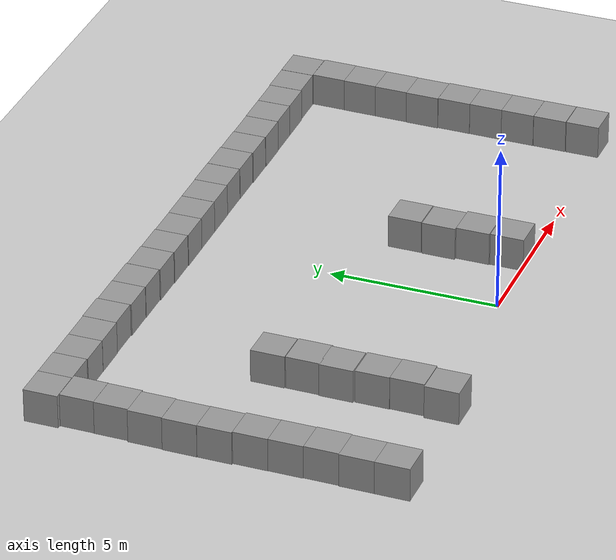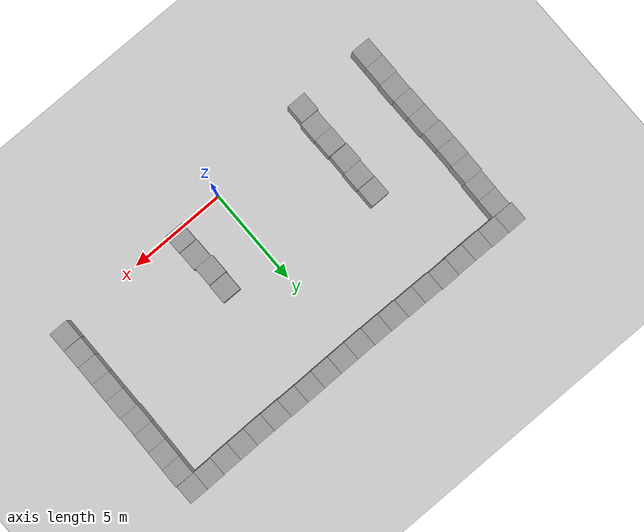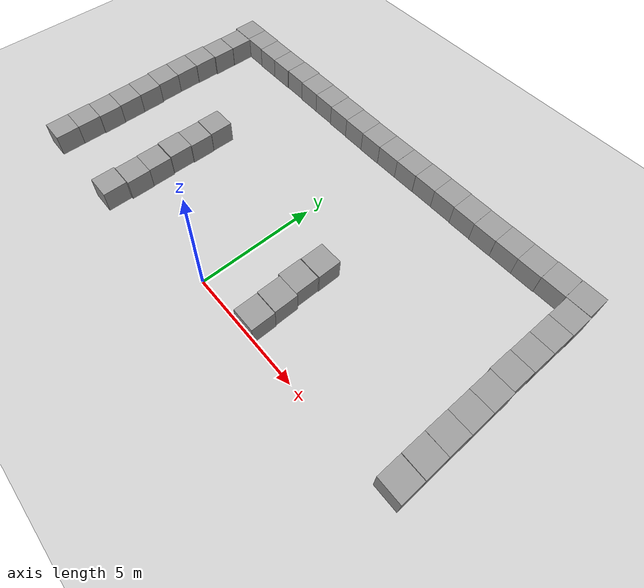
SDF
<sdf version="1.7">
 <world name="default">
  <model name="ground_plane">
   <static>1</static>
   <link name="link">
    <collision name="collision">
     <geometry><plane><normal>0 0 1</normal><size>100 100</size></plane></geometry>
     <surface>
      <contact><collide_bitmask>65535</collide_bitmask></contact>
      <friction><ode><mu>100</mu><mu2>50</mu2></ode></friction>
     </surface>
    </collision>
    <visual name="visual">
     <cast_shadows>0</cast_shadows>
     <geometry><plane><normal>0 0 1</normal><size>100 100</size></plane></geometry>
     <material>
      <script><uri>file://media/materials/scripts/gazebo.material</uri><name>Gazebo/Grey</name></script>
     </material>
    </visual>
   </link>
  </model>
  <model name="unit_box_0_clone_6">
   <pose>-9.47202 -0.506039 0.5 0 -0 -0.002882</pose>
   <link name="link">
    <inertial>
     <mass>1</mass>
     <inertia>
      <ixx>0.166667</ixx>
      <ixy>0</ixy>
      <ixz>0</ixz>
      <iyy>0.166667</iyy>
      <iyz>0</iyz>
      <izz>0.166667</izz>
     </inertia>
    </inertial>
    <collision name="collision"><geometry><box><size>1 1 1</size></box></geometry></collision>
    <visual name="visual">
     <geometry><box><size>1 1 1</size></box></geometry>
     <material>
      <script><name>Gazebo/Grey</name><uri>file://media/materials/scripts/gazebo.material</uri></script>
     </material>
    </visual>
   </link>
  </model>
  <model name="unit_box_0_clone_7">
   <pose>-9.46766 0.493972 0.499995 0 -1e-05 -0.002908</pose>
   <link name="link">
    <inertial>
     <mass>1</mass>
     <inertia>
      <ixx>0.166667</ixx>
      <ixy>0</ixy>
      <ixz>0</ixz>
      <iyy>0.166667</iyy>
      <iyz>0</iyz>
      <izz>0.166667</izz>
     </inertia>
    </inertial>
    <collision name="collision"><geometry><box><size>1 1 1</size></box></geometry></collision>
    <visual name="visual">
     <geometry><box><size>1 1 1</size></box></geometry>
     <material>
      <script><name>Gazebo/Grey</name><uri>file://media/materials/scripts/gazebo.material</uri></script>
     </material>
    </visual>
   </link>
  </model>
  <model name="unit_box_0_clone_8">
   <pose>-9.43801 1.49392 0.5 0 0 -0.00297</pose>
   <link name="link">
    <inertial>
     <mass>1</mass>
     <inertia>
      <ixx>0.166667</ixx>
      <ixy>0</ixy>
      <ixz>0</ixz>
      <iyy>0.166667</iyy>
      <iyz>0</iyz>
      <izz>0.166667</izz>
     </inertia>
    </inertial>
    <collision name="collision"><geometry><box><size>1 1 1</size></box></geometry></collision>
    <visual name="visual">
     <geometry><box><size>1 1 1</size></box></geometry>
     <material>
      <script><name>Gazebo/Grey</name><uri>file://media/materials/scripts/gazebo.material</uri></script>
     </material>
    </visual>
   </link>
  </model>
  <model name="unit_box_0_clone_9">
   <pose>-9.45504 2.49411 0.499995 -0 -1e-05 -0.003236</pose>
   <link name="link">
    <inertial>
     <mass>1</mass>
     <inertia>
      <ixx>0.166667</ixx>
      <ixy>0</ixy>
      <ixz>0</ixz>
      <iyy>0.166667</iyy>
      <iyz>0</iyz>
      <izz>0.166667</izz>
     </inertia>
    </inertial>
    <collision name="collision"><geometry><box><size>1 1 1</size></box></geometry></collision>
    <visual name="visual">
     <geometry><box><size>1 1 1</size></box></geometry>
     <material>
      <script><name>Gazebo/Grey</name><uri>file://media/materials/scripts/gazebo.material</uri></script>
     </material>
    </visual>
   </link>
  </model>
  <model name="unit_box_0_clone_10">
   <pose>-9.46283 3.49415 0.5 -0 -0 -0.003247</pose>
   <link name="link">
    <inertial>
     <mass>1</mass>
     <inertia>
      <ixx>0.166667</ixx>
      <ixy>0</ixy>
      <ixz>0</ixz>
      <iyy>0.166667</iyy>
      <iyz>0</iyz>
      <izz>0.166667</izz>
     </inertia>
    </inertial>
    <collision name="collision"><geometry><box><size>1 1 1</size></box></geometry></collision>
    <visual name="visual">
     <geometry><box><size>1 1 1</size></box></geometry>
     <material>
      <script><name>Gazebo/Grey</name><uri>file://media/materials/scripts/gazebo.material</uri></script>
     </material>
    </visual>
   </link>
  </model>
  <model name="unit_box_0_clone_11">
   <pose>-9.50926 4.49438 0.5 -0 -0 -0.003385</pose>
   <link name="link">
    <inertial>
     <mass>1</mass>
     <inertia>
      <ixx>0.166667</ixx>
      <ixy>0</ixy>
      <ixz>0</ixz>
      <iyy>0.166667</iyy>
      <iyz>0</iyz>
      <izz>0.166667</izz>
     </inertia>
    </inertial>
    <collision name="collision"><geometry><box><size>1 1 1</size></box></geometry></collision>
    <visual name="visual">
     <geometry><box><size>1 1 1</size></box></geometry>
     <material>
      <script><name>Gazebo/Grey</name><uri>file://media/materials/scripts/gazebo.material</uri></script>
     </material>
    </visual>
   </link>
  </model>
  <model name="unit_box_0_clone_12">
   <pose>-9.51318 5.49463 0.499995 -1e-05 -0 -0.003831</pose>
   <link name="link">
    <inertial>
     <mass>1</mass>
     <inertia>
      <ixx>0.166667</ixx>
      <ixy>0</ixy>
      <ixz>0</ixz>
      <iyy>0.166667</iyy>
      <iyz>0</iyz>
      <izz>0.166667</izz>
     </inertia>
    </inertial>
    <collision name="collision"><geometry><box><size>1 1 1</size></box></geometry></collision>
    <visual name="visual">
     <geometry><box><size>1 1 1</size></box></geometry>
     <material>
      <script><name>Gazebo/Grey</name><uri>file://media/materials/scripts/gazebo.material</uri></script>
     </material>
    </visual>
   </link>
  </model>
  <model name="unit_box_0_clone_13">
   <pose>-9.48454 6.49519 0.499995 1e-05 0 -0.00525</pose>
   <link name="link">
    <inertial>
     <mass>1</mass>
     <inertia>
      <ixx>0.166667</ixx>
      <ixy>0</ixy>
      <ixz>0</ixz>
      <iyy>0.166667</iyy>
      <iyz>0</iyz>
      <izz>0.166667</izz>
     </inertia>
    </inertial>
    <collision name="collision"><geometry><box><size>1 1 1</size></box></geometry></collision>
    <visual name="visual">
     <geometry><box><size>1 1 1</size></box></geometry>
     <material>
      <script><name>Gazebo/Grey</name><uri>file://media/materials/scripts/gazebo.material</uri></script>
     </material>
    </visual>
   </link>
  </model>
  <model name="unit_box_0_clone_14">
   <pose>-9.43049 7.49494 0.499995 -1e-05 -0 -0.005252</pose>
   <link name="link">
    <inertial>
     <mass>1</mass>
     <inertia>
      <ixx>0.166667</ixx>
      <ixy>0</ixy>
      <ixz>0</ixz>
      <iyy>0.166667</iyy>
      <iyz>0</iyz>
      <izz>0.166667</izz>
     </inertia>
    </inertial>
    <collision name="collision"><geometry><box><size>1 1 1</size></box></geometry></collision>
    <visual name="visual">
     <geometry><box><size>1 1 1</size></box></geometry>
     <material>
      <script><name>Gazebo/Grey</name><uri>file://media/materials/scripts/gazebo.material</uri></script>
     </material>
    </visual>
   </link>
  </model>
  <model name="unit_box_0_clone_15">
   <pose>-9.41461 8.49554 0.499995 0 1e-05 -0.00416</pose>
   <link name="link">
    <inertial>
     <mass>1</mass>
     <inertia>
      <ixx>0.166667</ixx>
      <ixy>0</ixy>
      <ixz>0</ixz>
      <iyy>0.166667</iyy>
      <iyz>0</iyz>
      <izz>0.166667</izz>
     </inertia>
    </inertial>
    <collision name="collision"><geometry><box><size>1 1 1</size></box></geometry></collision>
    <visual name="visual">
     <geometry><box><size>1 1 1</size></box></geometry>
     <material>
      <script><name>Gazebo/Grey</name><uri>file://media/materials/scripts/gazebo.material</uri></script>
     </material>
    </visual>
   </link>
  </model>
  <model name="unit_box_0_clone_16">
   <pose>-9.52608 9.50394 0.5 0 -0 0.001646</pose>
   <link name="link">
    <inertial>
     <mass>1</mass>
     <inertia>
      <ixx>0.166667</ixx>
      <ixy>0</ixy>
      <ixz>0</ixz>
      <iyy>0.166667</iyy>
      <iyz>0</iyz>
      <izz>0.166667</izz>
     </inertia>
    </inertial>
    <collision name="collision"><geometry><box><size>1 1 1</size></box></geometry></collision>
    <visual name="visual">
     <geometry><box><size>1 1 1</size></box></geometry>
     <material>
      <script><name>Gazebo/Grey</name><uri>file://media/materials/scripts/gazebo.material</uri></script>
     </material>
    </visual>
   </link>
  </model>
  <model name="unit_box_0_clone_17">
   <pose>-8.52607 9.49983 0.499995 -1e-05 -0 0.001645</pose>
   <link name="link">
    <inertial>
     <mass>1</mass>
     <inertia>
      <ixx>0.166667</ixx>
      <ixy>0</ixy>
      <ixz>0</ixz>
      <iyy>0.166667</iyy>
      <iyz>0</iyz>
      <izz>0.166667</izz>
     </inertia>
    </inertial>
    <collision name="collision"><geometry><box><size>1 1 1</size></box></geometry></collision>
    <visual name="visual">
     <geometry><box><size>1 1 1</size></box></geometry>
     <material>
      <script><name>Gazebo/Grey</name><uri>file://media/materials/scripts/gazebo.material</uri></script>
     </material>
    </visual>
   </link>
  </model>
  <model name="unit_box_0_clone_18">
   <pose>-7.52602 9.48062 0.499995 0 1e-05 0.001646</pose>
   <link name="link">
    <inertial>
     <mass>1</mass>
     <inertia>
      <ixx>0.166667</ixx>
      <ixy>0</ixy>
      <ixz>0</ixz>
      <iyy>0.166667</iyy>
      <iyz>0</iyz>
      <izz>0.166667</izz>
     </inertia>
    </inertial>
    <collision name="collision"><geometry><box><size>1 1 1</size></box></geometry></collision>
    <visual name="visual">
     <geometry><box><size>1 1 1</size></box></geometry>
     <material>
      <script><name>Gazebo/Grey</name><uri>file://media/materials/scripts/gazebo.material</uri></script>
     </material>
    </visual>
   </link>
  </model>
  <model name="unit_box_0_clone_19">
   <pose>-6.52602 9.48045 0.499995 0 -1e-05 0.001652</pose>
   <link name="link">
    <inertial>
     <mass>1</mass>
     <inertia>
      <ixx>0.166667</ixx>
      <ixy>0</ixy>
      <ixz>0</ixz>
      <iyy>0.166667</iyy>
      <iyz>0</iyz>
      <izz>0.166667</izz>
     </inertia>
    </inertial>
    <collision name="collision"><geometry><box><size>1 1 1</size></box></geometry></collision>
    <visual name="visual">
     <geometry><box><size>1 1 1</size></box></geometry>
     <material>
      <script><name>Gazebo/Grey</name><uri>file://media/materials/scripts/gazebo.material</uri></script>
     </material>
    </visual>
   </link>
  </model>
  <model name="unit_box_0_clone_20">
   <pose>-5.52554 9.49635 0.499995 -1e-05 0 0.002675</pose>
   <link name="link">
    <inertial>
     <mass>1</mass>
     <inertia>
      <ixx>0.166667</ixx>
      <ixy>0</ixy>
      <ixz>0</ixz>
      <iyy>0.166667</iyy>
      <iyz>0</iyz>
      <izz>0.166667</izz>
     </inertia>
    </inertial>
    <collision name="collision"><geometry><box><size>1 1 1</size></box></geometry></collision>
    <visual name="visual">
     <geometry><box><size>1 1 1</size></box></geometry>
     <material>
      <script><name>Gazebo/Grey</name><uri>file://media/materials/scripts/gazebo.material</uri></script>
     </material>
    </visual>
   </link>
  </model>
  <model name="unit_box_0_clone_21">
   <pose>-4.52546 9.46827 0.499995 -1e-05 0 0.002676</pose>
   <link name="link">
    <inertial>
     <mass>1</mass>
     <inertia>
      <ixx>0.166667</ixx>
      <ixy>0</ixy>
      <ixz>0</ixz>
      <iyy>0.166667</iyy>
      <iyz>0</iyz>
      <izz>0.166667</izz>
     </inertia>
    </inertial>
    <collision name="collision"><geometry><box><size>1 1 1</size></box></geometry></collision>
    <visual name="visual">
     <geometry><box><size>1 1 1</size></box></geometry>
     <material>
      <script><name>Gazebo/Grey</name><uri>file://media/materials/scripts/gazebo.material</uri></script>
     </material>
    </visual>
   </link>
  </model>
  <model name="unit_box_0_clone_22">
   <pose>-3.52543 9.46151 0.499995 1e-05 -0 0.002676</pose>
   <link name="link">
    <inertial>
     <mass>1</mass>
     <inertia>
      <ixx>0.166667</ixx>
      <ixy>0</ixy>
      <ixz>0</ixz>
      <iyy>0.166667</iyy>
      <iyz>0</iyz>
      <izz>0.166667</izz>
     </inertia>
    </inertial>
    <collision name="collision"><geometry><box><size>1 1 1</size></box></geometry></collision>
    <visual name="visual">
     <geometry><box><size>1 1 1</size></box></geometry>
     <material>
      <script><name>Gazebo/Grey</name><uri>file://media/materials/scripts/gazebo.material</uri></script>
     </material>
    </visual>
   </link>
  </model>
  <model name="unit_box_0_clone_23">
   <pose>-2.52516 9.43862 0.499995 0 -9e-06 0.002665</pose>
   <link name="link">
    <inertial>
     <mass>1</mass>
     <inertia>
      <ixx>0.166667</ixx>
      <ixy>0</ixy>
      <ixz>0</ixz>
      <iyy>0.166667</iyy>
      <iyz>0</iyz>
      <izz>0.166667</izz>
     </inertia>
    </inertial>
    <collision name="collision"><geometry><box><size>1 1 1</size></box></geometry></collision>
    <visual name="visual">
     <geometry><box><size>1 1 1</size></box></geometry>
     <material>
      <script><name>Gazebo/Grey</name><uri>file://media/materials/scripts/gazebo.material</uri></script>
     </material>
    </visual>
   </link>
  </model>
  <model name="unit_box_0_clone_24">
   <pose>-1.52511 9.42517 0.499995 0 9e-06 0.002665</pose>
   <link name="link">
    <inertial>
     <mass>1</mass>
     <inertia>
      <ixx>0.166667</ixx>
      <ixy>0</ixy>
      <ixz>0</ixz>
      <iyy>0.166667</iyy>
      <iyz>0</iyz>
      <izz>0.166667</izz>
     </inertia>
    </inertial>
    <collision name="collision"><geometry><box><size>1 1 1</size></box></geometry></collision>
    <visual name="visual">
     <geometry><box><size>1 1 1</size></box></geometry>
     <material>
      <script><name>Gazebo/Grey</name><uri>file://media/materials/scripts/gazebo.material</uri></script>
     </material>
    </visual>
   </link>
  </model>
  <model name="unit_box_0_clone_25">
   <pose>-0.524617 9.41424 0.499995 1e-05 -0 0.00302</pose>
   <link name="link">
    <inertial>
     <mass>1</mass>
     <inertia>
      <ixx>0.166667</ixx>
      <ixy>0</ixy>
      <ixz>0</ixz>
      <iyy>0.166667</iyy>
      <iyz>0</iyz>
      <izz>0.166667</izz>
     </inertia>
    </inertial>
    <collision name="collision"><geometry><box><size>1 1 1</size></box></geometry></collision>
    <visual name="visual">
     <geometry><box><size>1 1 1</size></box></geometry>
     <material>
      <script><name>Gazebo/Grey</name><uri>file://media/materials/scripts/gazebo.material</uri></script>
     </material>
    </visual>
   </link>
  </model>
  <model name="unit_box_0_clone_26">
   <pose>0.475413 9.42201 0.499995 -0 1e-05 0.002989</pose>
   <link name="link">
    <inertial>
     <mass>1</mass>
     <inertia>
      <ixx>0.166667</ixx>
      <ixy>0</ixy>
      <ixz>0</ixz>
      <iyy>0.166667</iyy>
      <iyz>0</iyz>
      <izz>0.166667</izz>
     </inertia>
    </inertial>
    <collision name="collision"><geometry><box><size>1 1 1</size></box></geometry></collision>
    <visual name="visual">
     <geometry><box><size>1 1 1</size></box></geometry>
     <material>
      <script><name>Gazebo/Grey</name><uri>file://media/materials/scripts/gazebo.material</uri></script>
     </material>
    </visual>
   </link>
  </model>
  <model name="unit_box_0_clone_27">
   <pose>1.47598 9.4266 0.499995 0 -1e-05 0.004126</pose>
   <link name="link">
    <inertial>
     <mass>1</mass>
     <inertia>
      <ixx>0.166667</ixx>
      <ixy>0</ixy>
      <ixz>0</ixz>
      <iyy>0.166667</iyy>
      <iyz>0</iyz>
      <izz>0.166667</izz>
     </inertia>
    </inertial>
    <collision name="collision"><geometry><box><size>1 1 1</size></box></geometry></collision>
    <visual name="visual">
     <geometry><box><size>1 1 1</size></box></geometry>
     <material>
      <script><name>Gazebo/Grey</name><uri>file://media/materials/scripts/gazebo.material</uri></script>
     </material>
    </visual>
   </link>
  </model>
  <model name="unit_box_0_clone_28">
   <pose>2.47603 9.43966 0.499995 1e-05 -0 0.004095</pose>
   <link name="link">
    <inertial>
     <mass>1</mass>
     <inertia>
      <ixx>0.166667</ixx>
      <ixy>0</ixy>
      <ixz>0</ixz>
      <iyy>0.166667</iyy>
      <iyz>0</iyz>
      <izz>0.166667</izz>
     </inertia>
    </inertial>
    <collision name="collision"><geometry><box><size>1 1 1</size></box></geometry></collision>
    <visual name="visual">
     <geometry><box><size>1 1 1</size></box></geometry>
     <material>
      <script><name>Gazebo/Grey</name><uri>file://media/materials/scripts/gazebo.material</uri></script>
     </material>
    </visual>
   </link>
  </model>
  <model name="unit_box_0_clone_29">
   <pose>3.47703 9.43838 0.499995 1e-05 -0 0.004924</pose>
   <link name="link">
    <inertial>
     <mass>1</mass>
     <inertia>
      <ixx>0.166667</ixx>
      <ixy>0</ixy>
      <ixz>0</ixz>
      <iyy>0.166667</iyy>
      <iyz>0</iyz>
      <izz>0.166667</izz>
     </inertia>
    </inertial>
    <collision name="collision"><geometry><box><size>1 1 1</size></box></geometry></collision>
    <visual name="visual">
     <geometry><box><size>1 1 1</size></box></geometry>
     <material>
      <script><name>Gazebo/Grey</name><uri>file://media/materials/scripts/gazebo.material</uri></script>
     </material>
    </visual>
   </link>
  </model>
  <model name="unit_box_0_clone_30">
   <pose>4.47714 9.42629 0.5 0 -0 0.004955</pose>
   <link name="link">
    <inertial>
     <mass>1</mass>
     <inertia>
      <ixx>0.166667</ixx>
      <ixy>0</ixy>
      <ixz>0</ixz>
      <iyy>0.166667</iyy>
      <iyz>0</iyz>
      <izz>0.166667</izz>
     </inertia>
    </inertial>
    <collision name="collision"><geometry><box><size>1 1 1</size></box></geometry></collision>
    <visual name="visual">
     <geometry><box><size>1 1 1</size></box></geometry>
     <material>
      <script><name>Gazebo/Grey</name><uri>file://media/materials/scripts/gazebo.material</uri></script>
     </material>
    </visual>
   </link>
  </model>
  <model name="unit_box_0_clone_31">
   <pose>5.47732 9.41948 0.499995 1e-05 -0 0.004984</pose>
   <link name="link">
    <inertial>
     <mass>1</mass>
     <inertia>
      <ixx>0.166667</ixx>
      <ixy>0</ixy>
      <ixz>0</ixz>
      <iyy>0.166667</iyy>
      <iyz>0</iyz>
      <izz>0.166667</izz>
     </inertia>
    </inertial>
    <collision name="collision"><geometry><box><size>1 1 1</size></box></geometry></collision>
    <visual name="visual">
     <geometry><box><size>1 1 1</size></box></geometry>
     <material>
      <script><name>Gazebo/Grey</name><uri>file://media/materials/scripts/gazebo.material</uri></script>
     </material>
    </visual>
   </link>
  </model>
  <model name="unit_box_0_clone_32">
   <pose>6.47776 9.43419 0.499995 0 1e-05 0.005791</pose>
   <link name="link">
    <inertial>
     <mass>1</mass>
     <inertia>
      <ixx>0.166667</ixx>
      <ixy>0</ixy>
      <ixz>0</ixz>
      <iyy>0.166667</iyy>
      <iyz>0</iyz>
      <izz>0.166667</izz>
     </inertia>
    </inertial>
    <collision name="collision"><geometry><box><size>1 1 1</size></box></geometry></collision>
    <visual name="visual">
     <geometry><box><size>1 1 1</size></box></geometry>
     <material>
      <script><name>Gazebo/Grey</name><uri>file://media/materials/scripts/gazebo.material</uri></script>
     </material>
    </visual>
   </link>
  </model>
  <model name="unit_box_0_clone_33">
   <pose>7.47774 9.44019 0.499995 0 -1e-05 0.005795</pose>
   <link name="link">
    <inertial>
     <mass>1</mass>
     <inertia>
      <ixx>0.166667</ixx>
      <ixy>0</ixy>
      <ixz>0</ixz>
      <iyy>0.166667</iyy>
      <iyz>0</iyz>
      <izz>0.166667</izz>
     </inertia>
    </inertial>
    <collision name="collision"><geometry><box><size>1 1 1</size></box></geometry></collision>
    <visual name="visual">
     <geometry><box><size>1 1 1</size></box></geometry>
     <material>
      <script><name>Gazebo/Grey</name><uri>file://media/materials/scripts/gazebo.material</uri></script>
     </material>
    </visual>
   </link>
  </model>
  <model name="unit_box_0_clone_34">
   <pose>8.47789 9.46771 0.499995 0 1e-05 0.006374</pose>
   <link name="link">
    <inertial>
     <mass>1</mass>
     <inertia>
      <ixx>0.166667</ixx>
      <ixy>0</ixy>
      <ixz>0</ixz>
      <iyy>0.166667</iyy>
      <iyz>0</iyz>
      <izz>0.166667</izz>
     </inertia>
    </inertial>
    <collision name="collision"><geometry><box><size>1 1 1</size></box></geometry></collision>
    <visual name="visual">
     <geometry><box><size>1 1 1</size></box></geometry>
     <material>
      <script><name>Gazebo/Grey</name><uri>file://media/materials/scripts/gazebo.material</uri></script>
     </material>
    </visual>
   </link>
  </model>
  <model name="unit_box_0_clone_35">
   <pose>9.48043 9.47726 0.499995 -1e-05 -0 0.001214</pose>
   <link name="link">
    <inertial>
     <mass>1</mass>
     <inertia>
      <ixx>0.166667</ixx>
      <ixy>0</ixy>
      <ixz>0</ixz>
      <iyy>0.166667</iyy>
      <iyz>0</iyz>
      <izz>0.166667</izz>
     </inertia>
    </inertial>
    <collision name="collision"><geometry><box><size>1 1 1</size></box></geometry></collision>
    <visual name="visual">
     <geometry><box><size>1 1 1</size></box></geometry>
     <material>
      <script><name>Gazebo/Grey</name><uri>file://media/materials/scripts/gazebo.material</uri></script>
     </material>
    </visual>
   </link>
  </model>
  <model name="unit_box_0_clone_36">
   <pose>9.51247 8.47112 0.499995 -1e-05 0 -0.011233</pose>
   <link name="link">
    <inertial>
     <mass>1</mass>
     <inertia>
      <ixx>0.166667</ixx>
      <ixy>0</ixy>
      <ixz>0</ixz>
      <iyy>0.166667</iyy>
      <iyz>0</iyz>
      <izz>0.166667</izz>
     </inertia>
    </inertial>
    <collision name="collision"><geometry><box><size>1 1 1</size></box></geometry></collision>
    <visual name="visual">
     <geometry><box><size>1 1 1</size></box></geometry>
     <material>
      <script><name>Gazebo/Grey</name><uri>file://media/materials/scripts/gazebo.material</uri></script>
     </material>
    </visual>
   </link>
  </model>
  <model name="unit_box_0_clone_37">
   <pose>9.49321 7.47124 0.5 0 0 -0.011209</pose>
   <link name="link">
    <inertial>
     <mass>1</mass>
     <inertia>
      <ixx>0.166667</ixx>
      <ixy>0</ixy>
      <ixz>0</ixz>
      <iyy>0.166667</iyy>
      <iyz>0</iyz>
      <izz>0.166667</izz>
     </inertia>
    </inertial>
    <collision name="collision"><geometry><box><size>1 1 1</size></box></geometry></collision>
    <visual name="visual">
     <geometry><box><size>1 1 1</size></box></geometry>
     <material>
      <script><name>Gazebo/Grey</name><uri>file://media/materials/scripts/gazebo.material</uri></script>
     </material>
    </visual>
   </link>
  </model>
  <model name="unit_box_0_clone_38">
   <pose>9.47848 6.47134 0.499995 0 -1e-05 -0.011205</pose>
   <link name="link">
    <inertial>
     <mass>1</mass>
     <inertia>
      <ixx>0.166667</ixx>
      <ixy>0</ixy>
      <ixz>0</ixz>
      <iyy>0.166667</iyy>
      <iyz>0</iyz>
      <izz>0.166667</izz>
     </inertia>
    </inertial>
    <collision name="collision"><geometry><box><size>1 1 1</size></box></geometry></collision>
    <visual name="visual">
     <geometry><box><size>1 1 1</size></box></geometry>
     <material>
      <script><name>Gazebo/Grey</name><uri>file://media/materials/scripts/gazebo.material</uri></script>
     </material>
    </visual>
   </link>
  </model>
  <model name="unit_box_0_clone_39">
   <pose>9.45638 5.47152 0.499995 0 1e-05 -0.011199</pose>
   <link name="link">
    <inertial>
     <mass>1</mass>
     <inertia>
      <ixx>0.166667</ixx>
      <ixy>0</ixy>
      <ixz>0</ixz>
      <iyy>0.166667</iyy>
      <iyz>0</iyz>
      <izz>0.166667</izz>
     </inertia>
    </inertial>
    <collision name="collision"><geometry><box><size>1 1 1</size></box></geometry></collision>
    <visual name="visual">
     <geometry><box><size>1 1 1</size></box></geometry>
     <material>
      <script><name>Gazebo/Grey</name><uri>file://media/materials/scripts/gazebo.material</uri></script>
     </material>
    </visual>
   </link>
  </model>
  <model name="unit_box_0_clone_40">
   <pose>9.47455 4.47123 0.5 0 0 -0.011165</pose>
   <link name="link">
    <inertial>
     <mass>1</mass>
     <inertia>
      <ixx>0.166667</ixx>
      <ixy>0</ixy>
      <ixz>0</ixz>
      <iyy>0.166667</iyy>
      <iyz>0</iyz>
      <izz>0.166667</izz>
     </inertia>
    </inertial>
    <collision name="collision"><geometry><box><size>1 1 1</size></box></geometry></collision>
    <visual name="visual">
     <geometry><box><size>1 1 1</size></box></geometry>
     <material>
      <script><name>Gazebo/Grey</name><uri>file://media/materials/scripts/gazebo.material</uri></script>
     </material>
    </visual>
   </link>
  </model>
  <model name="unit_box_0_clone_41">
   <pose>9.46916 3.47119 0.499995 0 1e-05 -0.011081</pose>
   <link name="link">
    <inertial>
     <mass>1</mass>
     <inertia>
      <ixx>0.166667</ixx>
      <ixy>0</ixy>
      <ixz>0</ixz>
      <iyy>0.166667</iyy>
      <iyz>0</iyz>
      <izz>0.166667</izz>
     </inertia>
    </inertial>
    <collision name="collision"><geometry><box><size>1 1 1</size></box></geometry></collision>
    <visual name="visual">
     <geometry><box><size>1 1 1</size></box></geometry>
     <material>
      <script><name>Gazebo/Grey</name><uri>file://media/materials/scripts/gazebo.material</uri></script>
     </material>
    </visual>
   </link>
  </model>
  <model name="unit_box_0_clone_42">
   <pose>9.45905 2.47123 0.499995 0 -1e-05 -0.011057</pose>
   <link name="link">
    <inertial>
     <mass>1</mass>
     <inertia>
      <ixx>0.166667</ixx>
      <ixy>0</ixy>
      <ixz>0</ixz>
      <iyy>0.166667</iyy>
      <iyz>0</iyz>
      <izz>0.166667</izz>
     </inertia>
    </inertial>
    <collision name="collision"><geometry><box><size>1 1 1</size></box></geometry></collision>
    <visual name="visual">
     <geometry><box><size>1 1 1</size></box></geometry>
     <material>
      <script><name>Gazebo/Grey</name><uri>file://media/materials/scripts/gazebo.material</uri></script>
     </material>
    </visual>
   </link>
  </model>
  <model name="unit_box_0_clone_43">
   <pose>9.45523 1.46932 0.5 0 0 -0.007247</pose>
   <link name="link">
    <inertial>
     <mass>1</mass>
     <inertia>
      <ixx>0.166667</ixx>
      <ixy>0</ixy>
      <ixz>0</ixz>
      <iyy>0.166667</iyy>
      <iyz>0</iyz>
      <izz>0.166667</izz>
     </inertia>
    </inertial>
    <collision name="collision"><geometry><box><size>1 1 1</size></box></geometry></collision>
    <visual name="visual">
     <geometry><box><size>1 1 1</size></box></geometry>
     <material>
      <script><name>Gazebo/Grey</name><uri>file://media/materials/scripts/gazebo.material</uri></script>
     </material>
    </visual>
   </link>
  </model>
  <model name="unit_box_0_clone_44">
   <pose>9.45428 0.455971 0.499995 0 -1e-05 -0.002437</pose>
   <link name="link">
    <inertial>
     <mass>1</mass>
     <inertia>
      <ixx>0.166667</ixx>
      <ixy>0</ixy>
      <ixz>0</ixz>
      <iyy>0.166667</iyy>
      <iyz>0</iyz>
      <izz>0.166667</izz>
     </inertia>
    </inertial>
    <collision name="collision"><geometry><box><size>1 1 1</size></box></geometry></collision>
    <visual name="visual">
     <geometry><box><size>1 1 1</size></box></geometry>
     <material>
      <script><name>Gazebo/Grey</name><uri>file://media/materials/scripts/gazebo.material</uri></script>
     </material>
    </visual>
   </link>
  </model>
  <model name="unit_box_0_clone_77">
   <pose>-5.57696 -0.488735 0.5 0 0 -0.002438</pose>
   <link name="link">
    <inertial>
     <mass>1</mass>
     <inertia>
      <ixx>0.166667</ixx>
      <ixy>0</ixy>
      <ixz>0</ixz>
      <iyy>0.166667</iyy>
      <iyz>0</iyz>
      <izz>0.166667</izz>
     </inertia>
    </inertial>
    <collision name="collision"><geometry><box><size>1 1 1</size></box></geometry></collision>
    <visual name="visual">
     <geometry><box><size>1 1 1</size></box></geometry>
     <material>
      <script><name>Gazebo/Grey</name><uri>file://media/materials/scripts/gazebo.material</uri></script>
     </material>
    </visual>
   </link>
  </model>
  <model name="unit_box_0_clone_78">
   <pose>-5.49507 0.525794 0.5 0 0 -0.002438</pose>
   <link name="link">
    <inertial>
     <mass>1</mass>
     <inertia>
      <ixx>0.166667</ixx>
      <ixy>0</ixy>
      <ixz>0</ixz>
      <iyy>0.166667</iyy>
      <iyz>0</iyz>
      <izz>0.166667</izz>
     </inertia>
    </inertial>
    <collision name="collision"><geometry><box><size>1 1 1</size></box></geometry></collision>
    <visual name="visual">
     <geometry><box><size>1 1 1</size></box></geometry>
     <material>
      <script><name>Gazebo/Grey</name><uri>file://media/materials/scripts/gazebo.material</uri></script>
     </material>
    </visual>
   </link>
  </model>
  <model name="unit_box_0_clone_79">
   <pose>-5.51245 1.51968 0.5 0 0 -0.002438</pose>
   <link name="link">
    <inertial>
     <mass>1</mass>
     <inertia>
      <ixx>0.166667</ixx>
      <ixy>0</ixy>
      <ixz>0</ixz>
      <iyy>0.166667</iyy>
      <iyz>0</iyz>
      <izz>0.166667</izz>
     </inertia>
    </inertial>
    <collision name="collision"><geometry><box><size>1 1 1</size></box></geometry></collision>
    <visual name="visual">
     <geometry><box><size>1 1 1</size></box></geometry>
     <material>
      <script><name>Gazebo/Grey</name><uri>file://media/materials/scripts/gazebo.material</uri></script>
     </material>
    </visual>
   </link>
  </model>
  <model name="unit_box_0_clone_80">
   <pose>-5.55336 2.55154 0.5 0 0 -0.002438</pose>
   <link name="link">
    <inertial>
     <mass>1</mass>
     <inertia>
      <ixx>0.166667</ixx>
      <ixy>0</ixy>
      <ixz>0</ixz>
      <iyy>0.166667</iyy>
      <iyz>0</iyz>
      <izz>0.166667</izz>
     </inertia>
    </inertial>
    <collision name="collision"><geometry><box><size>1 1 1</size></box></geometry></collision>
    <visual name="visual">
     <geometry><box><size>1 1 1</size></box></geometry>
     <material>
      <script><name>Gazebo/Grey</name><uri>file://media/materials/scripts/gazebo.material</uri></script>
     </material>
    </visual>
   </link>
  </model>
  <model name="unit_box_0_clone_81">
   <pose>-5.51749 3.52366 0.5 0 0 -0.002438</pose>
   <link name="link">
    <inertial>
     <mass>1</mass>
     <inertia>
      <ixx>0.166667</ixx>
      <ixy>0</ixy>
      <ixz>0</ixz>
      <iyy>0.166667</iyy>
      <iyz>0</iyz>
      <izz>0.166667</izz>
     </inertia>
    </inertial>
    <collision name="collision"><geometry><box><size>1 1 1</size></box></geometry></collision>
    <visual name="visual">
     <geometry><box><size>1 1 1</size></box></geometry>
     <material>
      <script><name>Gazebo/Grey</name><uri>file://media/materials/scripts/gazebo.material</uri></script>
     </material>
    </visual>
   </link>
  </model>
  <model name="unit_box_0_clone_82">
   <pose>-5.53536 4.54104 0.5 0 0 -0.002438</pose>
   <link name="link">
    <inertial>
     <mass>1</mass>
     <inertia>
      <ixx>0.166667</ixx>
      <ixy>0</ixy>
      <ixz>0</ixz>
      <iyy>0.166667</iyy>
      <iyz>0</iyz>
      <izz>0.166667</izz>
     </inertia>
    </inertial>
    <collision name="collision"><geometry><box><size>1 1 1</size></box></geometry></collision>
    <visual name="visual">
     <geometry><box><size>1 1 1</size></box></geometry>
     <material>
      <script><name>Gazebo/Grey</name><uri>file://media/materials/scripts/gazebo.material</uri></script>
     </material>
    </visual>
   </link>
  </model>
  <model name="unit_box_0_clone_83">
   <pose>2.49524 3.49522 0.5 0 0 -0.002438</pose>
   <link name="link">
    <inertial>
     <mass>1</mass>
     <inertia>
      <ixx>0.166667</ixx>
      <ixy>0</ixy>
      <ixz>0</ixz>
      <iyy>0.166667</iyy>
      <iyz>0</iyz>
      <izz>0.166667</izz>
     </inertia>
    </inertial>
    <collision name="collision"><geometry><box><size>1 1 1</size></box></geometry></collision>
    <visual name="visual">
     <geometry><box><size>1 1 1</size></box></geometry>
     <material>
      <script><name>Gazebo/Grey</name><uri>file://media/materials/scripts/gazebo.material</uri></script>
     </material>
    </visual>
   </link>
  </model>
  <model name="unit_box_0_clone_90">
   <pose>2.57777 0.451347 0.5 0 0 -0.002438</pose>
   <link name="link">
    <inertial>
     <mass>1</mass>
     <inertia>
      <ixx>0.166667</ixx>
      <ixy>0</ixy>
      <ixz>0</ixz>
      <iyy>0.166667</iyy>
      <iyz>0</iyz>
      <izz>0.166667</izz>
     </inertia>
    </inertial>
    <collision name="collision"><geometry><box><size>1 1 1</size></box></geometry></collision>
    <visual name="visual">
     <geometry><box><size>1 1 1</size></box></geometry>
     <material>
      <script><name>Gazebo/Grey</name><uri>file://media/materials/scripts/gazebo.material</uri></script>
     </material>
    </visual>
   </link>
  </model>
  <model name="unit_box_0_clone_91">
   <pose>2.55384 1.4701 0.5 0 0 -0.002438</pose>
   <link name="link">
    <inertial>
     <mass>1</mass>
     <inertia>
      <ixx>0.166667</ixx>
      <ixy>0</ixy>
      <ixz>0</ixz>
      <iyy>0.166667</iyy>
      <iyz>0</iyz>
      <izz>0.166667</izz>
     </inertia>
    </inertial>
    <collision name="collision"><geometry><box><size>1 1 1</size></box></geometry></collision>
    <visual name="visual">
     <geometry><box><size>1 1 1</size></box></geometry>
     <material>
      <script><name>Gazebo/Grey</name><uri>file://media/materials/scripts/gazebo.material</uri></script>
     </material>
    </visual>
   </link>
  </model>
  <model name="unit_box_0_clone_92">
   <pose>2.47335 2.47004 0.5 0 0 -0.002438</pose>
   <link name="link">
    <inertial>
     <mass>1</mass>
     <inertia>
      <ixx>0.166667</ixx>
      <ixy>0</ixy>
      <ixz>0</ixz>
      <iyy>0.166667</iyy>
      <iyz>0</iyz>
      <izz>0.166667</izz>
     </inertia>
    </inertial>
    <collision name="collision"><geometry><box><size>1 1 1</size></box></geometry></collision>
    <visual name="visual">
     <geometry><box><size>1 1 1</size></box></geometry>
     <material>
      <script><name>Gazebo/Grey</name><uri>file://media/materials/scripts/gazebo.material</uri></script>
     </material>
    </visual>
   </link>
  </model>
 </world>
</sdf>
